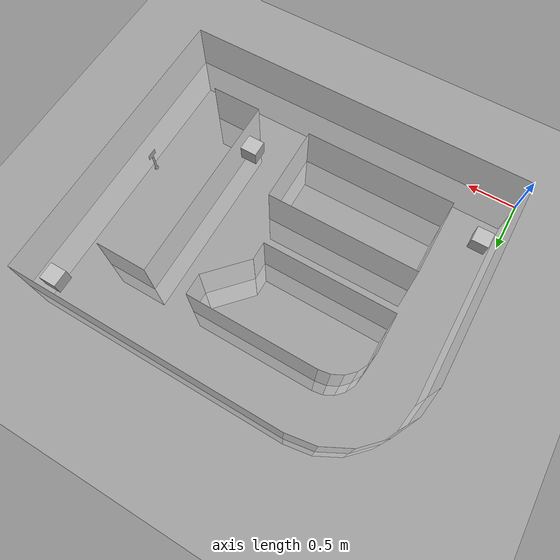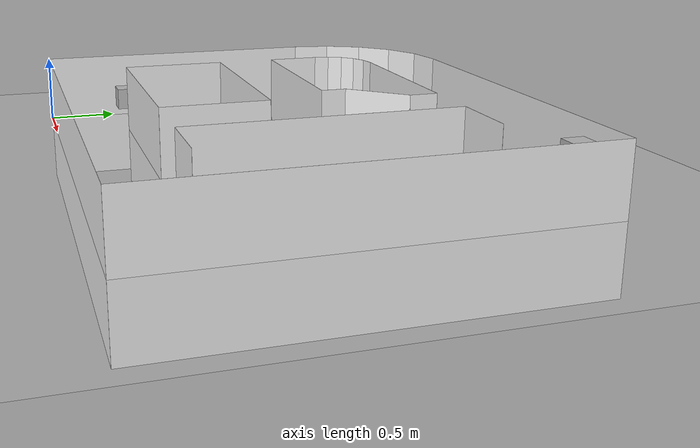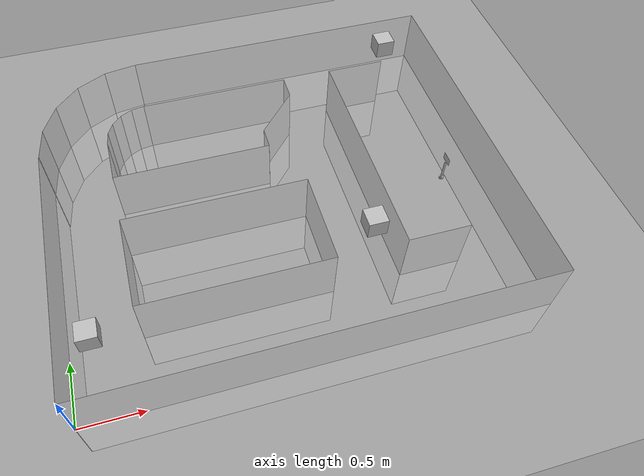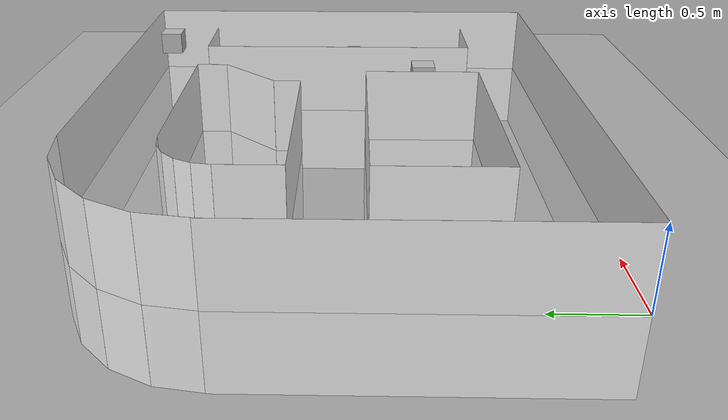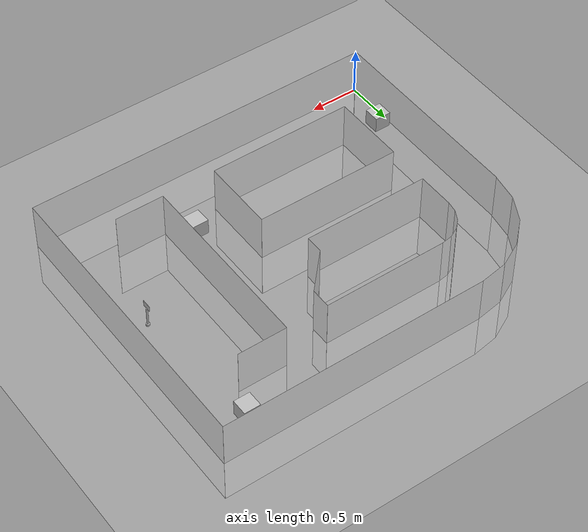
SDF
<sdf version="1.7">
 <world name="default">
  <light name="sun" type="directional">
   <cast_shadows>0</cast_shadows>
   <pose>0 0 10 0 -0 0</pose>
   <diffuse>0.8 0.8 0.8 1</diffuse>
   <specular>0.1 0.1 0.1 1</specular>
   <attenuation>
    <range>1000</range>
    <constant>0.9</constant>
    <linear>0.01</linear>
    <quadratic>0.001</quadratic>
   </attenuation>
   <direction>-0.5 0.5 -1</direction>
   <spot><inner_angle>0</inner_angle><outer_angle>0</outer_angle><falloff>0</falloff></spot>
  </light>
  <model name="ground_plane">
   <static>1</static>
   <link name="link">
    <collision name="collision">
     <geometry><plane><normal>0 0 1</normal><size>100 100</size></plane></geometry>
     <surface><friction><ode><mu>100</mu><mu2>50</mu2></ode></friction></surface>
    </collision>
    <visual name="visual">
     <cast_shadows>0</cast_shadows>
     <geometry><plane><normal>0 0 1</normal><size>100 100</size></plane></geometry>
     <material>
      <script><uri>file://media/materials/scripts/gazebo.material</uri><name>Gazebo/Grey</name></script>
     </material>
    </visual>
   </link>
  </model>
  <model name="wall_0">
   <static>1</static>
   <link name="link">
    <collision name="collision"><geometry><box><size>2.1336 0.001 1</size></box></geometry></collision>
    <visual name="visual">
     <geometry><box><size>2.1336 0.001 1</size></box></geometry>
     <material>
      <script><name>Gazebo/White</name><uri>file://media/materials/scripts/gazebo.material</uri></script>
     </material>
    </visual>
   </link>
   <pose>-0.003439 1.06735 0 0 -0 1.5708</pose>
  </model>
  <model name="wall_1">
   <static>1</static>
   <link name="link">
    <collision name="collision"><geometry><box><size>0.286088 0.001 1</size></box></geometry></collision>
    <visual name="visual">
     <geometry><box><size>0.286088 0.001 1</size></box></geometry>
     <material>
      <script><name>Gazebo/White</name><uri>file://media/materials/scripts/gazebo.material</uri></script>
     </material>
    </visual>
   </link>
   <pose>0.022377 2.27489 0 0 -0 1.41372</pose>
  </model>
  <model name="wall_2">
   <static>1</static>
   <link name="link">
    <collision name="collision"><geometry><box><size>0.286088 0.001 1</size></box></geometry></collision>
    <visual name="visual">
     <geometry><box><size>0.286088 0.001 1</size></box></geometry>
     <material>
      <script><name>Gazebo/White</name><uri>file://media/materials/scripts/gazebo.material</uri></script>
     </material>
    </visual>
   </link>
   <pose>0.109695 2.54362 0 0 -0 1.09956</pose>
  </model>
  <model name="wall_3">
   <static>1</static>
   <link name="link">
    <collision name="collision"><geometry><box><size>0.286088 0.001 1</size></box></geometry></collision>
    <visual name="visual">
     <geometry><box><size>0.286088 0.001 1</size></box></geometry>
     <material>
      <script><name>Gazebo/White</name><uri>file://media/materials/scripts/gazebo.material</uri></script>
     </material>
    </visual>
   </link>
   <pose>0.275783 2.77222 0 0 -0 0.785398</pose>
  </model>
  <model name="wall_4">
   <static>1</static>
   <link name="link">
    <collision name="collision"><geometry><box><size>0.286088 0.001 1</size></box></geometry></collision>
    <visual name="visual">
     <geometry><box><size>0.286088 0.001 1</size></box></geometry>
     <material>
      <script><name>Gazebo/White</name><uri>file://media/materials/scripts/gazebo.material</uri></script>
     </material>
    </visual>
   </link>
   <pose>0.504383 2.93831 0 0 -0 0.471239</pose>
  </model>
  <model name="wall_5">
   <static>1</static>
   <link name="link">
    <collision name="collision"><geometry><box><size>0.286088 0.001 1</size></box></geometry></collision>
    <visual name="visual">
     <geometry><box><size>0.286088 0.001 1</size></box></geometry>
     <material>
      <script><name>Gazebo/White</name><uri>file://media/materials/scripts/gazebo.material</uri></script>
     </material>
    </visual>
   </link>
   <pose>0.773119 3.02563 0 0 -0 0.15708</pose>
  </model>
  <model name="wall_6">
   <static>1</static>
   <link name="link">
    <collision name="collision"><geometry><box><size>2.74321 0.001 1</size></box></geometry></collision>
    <visual name="visual">
     <geometry><box><size>2.74321 0.001 1</size></box></geometry>
     <material>
      <script><name>Gazebo/White</name><uri>file://media/materials/scripts/gazebo.material</uri></script>
     </material>
    </visual>
   </link>
   <pose>2.286 3.04801 0 0 -0 0</pose>
  </model>
  <model name="wall_7">
   <static>1</static>
   <link name="link">
    <collision name="collision"><geometry><box><size>3.04801 0.001 1</size></box></geometry></collision>
    <visual name="visual">
     <geometry><box><size>3.04801 0.001 1</size></box></geometry>
     <material>
      <script><name>Gazebo/White</name><uri>file://media/materials/scripts/gazebo.material</uri></script>
     </material>
    </visual>
   </link>
   <pose>3.65761 1.524 0 0 0 -1.5708</pose>
  </model>
  <model name="wall_8">
   <static>1</static>
   <link name="link">
    <collision name="collision"><geometry><box><size>3.65761 0.001 1</size></box></geometry></collision>
    <visual name="visual">
     <geometry><box><size>3.65761 0.001 1</size></box></geometry>
     <material>
      <script><name>Gazebo/White</name><uri>file://media/materials/scripts/gazebo.material</uri></script>
     </material>
    </visual>
   </link>
   <pose>1.8288 0 0 0 0 -3.14159</pose>
  </model>
  <model name="wall_9">
   <static>1</static>
   <link name="link">
    <collision name="collision"><geometry><box><size>0.762002 0.001 1</size></box></geometry></collision>
    <visual name="visual">
     <geometry><box><size>0.762002 0.001 1</size></box></geometry>
     <material>
      <script><name>Gazebo/White</name><uri>file://media/materials/scripts/gazebo.material</uri></script>
     </material>
    </visual>
   </link>
   <pose>0.558801 0.939802 0 0 -0 1.5708</pose>
  </model>
  <model name="wall_10">
   <static>1</static>
   <link name="link">
    <collision name="collision"><geometry><box><size>1.4986 0.001 1</size></box></geometry></collision>
    <visual name="visual">
     <geometry><box><size>1.4986 0.001 1</size></box></geometry>
     <material>
      <script><name>Gazebo/White</name><uri>file://media/materials/scripts/gazebo.material</uri></script>
     </material>
    </visual>
   </link>
   <pose>1.3081 1.3208 0 0 -0 0</pose>
  </model>
  <model name="wall_11">
   <static>1</static>
   <link name="link">
    <collision name="collision"><geometry><box><size>0.762002 0.001 1</size></box></geometry></collision>
    <visual name="visual">
     <geometry><box><size>0.762002 0.001 1</size></box></geometry>
     <material>
      <script><name>Gazebo/White</name><uri>file://media/materials/scripts/gazebo.material</uri></script>
     </material>
    </visual>
   </link>
   <pose>2.0574 0.939802 0 0 0 -1.5708</pose>
  </model>
  <model name="wall_12">
   <static>1</static>
   <link name="link">
    <collision name="collision"><geometry><box><size>1.4986 0.001 1</size></box></geometry></collision>
    <visual name="visual">
     <geometry><box><size>1.4986 0.001 1</size></box></geometry>
     <material>
      <script><name>Gazebo/White</name><uri>file://media/materials/scripts/gazebo.material</uri></script>
     </material>
    </visual>
   </link>
   <pose>1.3081 0.558801 0 0 0 -3.14159</pose>
  </model>
  <model name="wall_13">
   <static>1</static>
   <link name="link">
    <collision name="collision"><geometry><box><size>0.381001 0.001 1</size></box></geometry></collision>
    <visual name="visual">
     <geometry><box><size>0.381001 0.001 1</size></box></geometry>
     <material>
      <script><name>Gazebo/White</name><uri>file://media/materials/scripts/gazebo.material</uri></script>
     </material>
    </visual>
   </link>
   <pose>0.558801 1.9431 0 0 -0 1.5708</pose>
  </model>
  <model name="wall_14">
   <static>1</static>
   <link name="link">
    <collision name="collision"><geometry><box><size>0.111256 0.001 1</size></box></geometry></collision>
    <visual name="visual">
     <geometry><box><size>0.111256 0.001 1</size></box></geometry>
     <material>
      <script><name>Gazebo/White</name><uri>file://media/materials/scripts/gazebo.material</uri></script>
     </material>
    </visual>
   </link>
   <pose>0.567503 2.18855 0 0 -0 1.41372</pose>
  </model>
  <model name="wall_15">
   <static>1</static>
   <link name="link">
    <collision name="collision"><geometry><box><size>0.111256 0.001 1</size></box></geometry></collision>
    <visual name="visual">
     <geometry><box><size>0.111256 0.001 1</size></box></geometry>
     <material>
      <script><name>Gazebo/White</name><uri>file://media/materials/scripts/gazebo.material</uri></script>
     </material>
    </visual>
   </link>
   <pose>0.60146 2.29306 0 0 -0 1.09956</pose>
  </model>
  <model name="wall_16">
   <static>1</static>
   <link name="link">
    <collision name="collision"><geometry><box><size>0.111256 0.001 1</size></box></geometry></collision>
    <visual name="visual">
     <geometry><box><size>0.111256 0.001 1</size></box></geometry>
     <material>
      <script><name>Gazebo/White</name><uri>file://media/materials/scripts/gazebo.material</uri></script>
     </material>
    </visual>
   </link>
   <pose>0.66605 2.38196 0 0 -0 0.785398</pose>
  </model>
  <model name="wall_17">
   <static>1</static>
   <link name="link">
    <collision name="collision"><geometry><box><size>0.111256 0.001 1</size></box></geometry></collision>
    <visual name="visual">
     <geometry><box><size>0.111256 0.001 1</size></box></geometry>
     <material>
      <script><name>Gazebo/White</name><uri>file://media/materials/scripts/gazebo.material</uri></script>
     </material>
    </visual>
   </link>
   <pose>0.75495 2.44655 0 0 -0 0.471239</pose>
  </model>
  <model name="wall_18">
   <static>1</static>
   <link name="link">
    <collision name="collision"><geometry><box><size>0.111256 0.001 1</size></box></geometry></collision>
    <visual name="visual">
     <geometry><box><size>0.111256 0.001 1</size></box></geometry>
     <material>
      <script><name>Gazebo/White</name><uri>file://media/materials/scripts/gazebo.material</uri></script>
     </material>
    </visual>
   </link>
   <pose>0.859458 2.4805 0 0 -0 0.15708</pose>
  </model>
  <model name="wall_19">
   <static>1</static>
   <link name="link">
    <collision name="collision"><geometry><box><size>1.27 0.001 1</size></box></geometry></collision>
    <visual name="visual">
     <geometry><box><size>1.27 0.001 1</size></box></geometry>
     <material>
      <script><name>Gazebo/White</name><uri>file://media/materials/scripts/gazebo.material</uri></script>
     </material>
    </visual>
   </link>
   <pose>1.5494 2.48921 0 0 -0 0</pose>
  </model>
  <model name="wall_20">
   <static>1</static>
   <link name="link">
    <collision name="collision"><geometry><box><size>0.2032 0.001 1</size></box></geometry></collision>
    <visual name="visual">
     <geometry><box><size>0.2032 0.001 1</size></box></geometry>
     <material>
      <script><name>Gazebo/White</name><uri>file://media/materials/scripts/gazebo.material</uri></script>
     </material>
    </visual>
   </link>
   <pose>2.1844 2.38761 0 0 0 -1.5708</pose>
  </model>
  <model name="wall_21">
   <static>1</static>
   <link name="link">
    <collision name="collision"><geometry><box><size>0.485267 0.001 1</size></box></geometry></collision>
    <visual name="visual">
     <geometry><box><size>0.485267 0.001 1</size></box></geometry>
     <material>
      <script><name>Gazebo/White</name><uri>file://media/materials/scripts/gazebo.material</uri></script>
     </material>
    </visual>
   </link>
   <pose>2.0193 2.1082 0 0 0 -2.31917</pose>
  </model>
  <model name="wall_22">
   <static>1</static>
   <link name="link">
    <collision name="collision"><geometry><box><size>0.1778 0.001 1</size></box></geometry></collision>
    <visual name="visual">
     <geometry><box><size>0.1778 0.001 1</size></box></geometry>
     <material>
      <script><name>Gazebo/White</name><uri>file://media/materials/scripts/gazebo.material</uri></script>
     </material>
    </visual>
   </link>
   <pose>1.8542 1.8415 0 0 0 -1.5708</pose>
  </model>
  <model name="wall_23">
   <static>1</static>
   <link name="link">
    <collision name="collision"><geometry><box><size>1.2954 0.001 1</size></box></geometry></collision>
    <visual name="visual">
     <geometry><box><size>1.2954 0.001 1</size></box></geometry>
     <material>
      <script><name>Gazebo/White</name><uri>file://media/materials/scripts/gazebo.material</uri></script>
     </material>
    </visual>
   </link>
   <pose>1.2065 1.7526 0 0 0 -3.14159</pose>
  </model>
  <model name="wall_24">
   <static>1</static>
   <link name="link">
    <collision name="collision"><geometry><box><size>0.508001 0.001 1</size></box></geometry></collision>
    <visual name="visual">
     <geometry><box><size>0.508001 0.001 1</size></box></geometry>
     <material>
      <script><name>Gazebo/White</name><uri>file://media/materials/scripts/gazebo.material</uri></script>
     </material>
    </visual>
   </link>
   <pose>2.87021 2.48921 0 0 -0 0</pose>
  </model>
  <model name="wall_25">
   <static>1</static>
   <link name="link">
    <collision name="collision"><geometry><box><size>0.508001 0.001 1</size></box></geometry></collision>
    <visual name="visual">
     <geometry><box><size>0.508001 0.001 1</size></box></geometry>
     <material>
      <script><name>Gazebo/White</name><uri>file://media/materials/scripts/gazebo.material</uri></script>
     </material>
    </visual>
   </link>
   <pose>2.87021 0.558801 0 0 0 -3.14159</pose>
  </model>
  <model name="wall_26">
   <static>1</static>
   <link name="link">
    <collision name="collision"><geometry><box><size>1.9304 0.001 1</size></box></geometry></collision>
    <visual name="visual">
     <geometry><box><size>1.9304 0.001 1</size></box></geometry>
     <material>
      <script><name>Gazebo/White</name><uri>file://media/materials/scripts/gazebo.material</uri></script>
     </material>
    </visual>
   </link>
   <pose>2.6162 1.524 0 0 -0 1.5708</pose>
  </model>
  <model name="flag">
   <link name="plate">
    <pose>0 0 0.2425 0 -0 0</pose>
    <collision name="collision">
     <geometry><box><size>0.001 0.1 0.065</size></box></geometry>
     <surface><friction><ode><mu>1</mu><mu2>1</mu2></ode></friction></surface>
    </collision>
    <visual name="visual"><geometry><box><size>0.001 0.1 0.065</size></box></geometry></visual>
    <inertial>
     <inertia><ixx>0.1</ixx><ixy>0</ixy><ixz>0</ixz><iyy>0.1</iyy><iyz>0</iyz><izz>0.1</izz></inertia>
     <mass>0.1</mass>
    </inertial>
   </link>
   <link name="pole">
    <pose>0 0 0.11 0 -0 0</pose>
    <collision name="collision">
     <geometry><cylinder><radius>0.01</radius><length>0.2</length></cylinder></geometry>
     <surface>
      <friction><torsional><coefficient>1</coefficient></torsional><ode><mu>1</mu><mu2>1</mu2></ode></friction>
     </surface>
    </collision>
    <visual name="visual">
     <geometry><cylinder><radius>0.01</radius><length>0.2</length></cylinder></geometry>
    </visual>
    <inertial>
     <inertia><ixx>1</ixx><ixy>0</ixy><ixz>0</ixz><iyy>1</iyy><iyz>0</iyz><izz>1</izz></inertia>
     <mass>1</mass>
    </inertial>
   </link>
   <link name="base">
    <collision name="collision">
     <geometry><cylinder><radius>0.02</radius><length>0.02</length></cylinder></geometry>
     <surface><friction><ode><mu>0.01</mu><mu2>0.01</mu2></ode></friction></surface>
    </collision>
    <visual name="visual">
     <geometry><cylinder><radius>0.02</radius><length>0.02</length></cylinder></geometry>
    </visual>
    <inertial>
     <inertia><ixx>0.1</ixx><ixy>0</ixy><ixz>0</ixz><iyy>0.1</iyy><iyz>0</iyz><izz>0.1</izz></inertia>
     <mass>0.1</mass>
    </inertial>
    <gravity>0</gravity>
   </link>
   <joint name="base_pole" type="fixed">
    <parent>base</parent>
    <child>pole</child>
    <pose>0 0 0.02 0 -0 0</pose>
   </joint>
   <joint name="pole_plate" type="fixed">
    <parent>pole</parent>
    <child>plate</child>
    <pose>0 0 0.1 0 -0 0</pose>
   </joint>
   <pose>3.35 1.40095 0.010019 0.000955 0.000139 3.14145</pose>
  </model>
  <gravity>0 0 -9.8</gravity>
  <magnetic_field>6e-06 2.3e-05 -4.2e-05</magnetic_field>
  <atmosphere type="adiabatic"/>
  <physics name="default_physics" default="0" type="ode">
   <max_step_size>0.001</max_step_size>
   <real_time_factor>1</real_time_factor>
   <real_time_update_rate>1000</real_time_update_rate>
  </physics>
  <scene><ambient>0.4 0.4 0.4 1</ambient><background>0.7 0.7 0.7 1</background><shadows>1</shadows></scene>
  <spherical_coordinates>
   <surface_model>EARTH_WGS84</surface_model>
   <latitude_deg>0</latitude_deg>
   <longitude_deg>0</longitude_deg>
   <elevation>0</elevation>
   <heading_deg>0</heading_deg>
  </spherical_coordinates>
  <model name="sheeps">
   <link name="link">
    <inertial>
     <mass>2</mass>
     <inertia>
      <ixx>0.0416667</ixx>
      <ixy>0</ixy>
      <ixz>0</ixz>
      <iyy>0.0566667</iyy>
      <iyz>0</iyz>
      <izz>0.0683333</izz>
     </inertia>
    </inertial>
    <pose>0.166522 -0 0 0 -0 0</pose>
    <visual name="visual">
     <geometry><mesh><uri>model://sheep/meshes/sheep.dae</uri><scale>0.2 0.2 0.2</scale></mesh></geometry>
     <material><shader type="pixel"/></material>
    </visual>
    <collision name="collision">
     <geometry><box><size>0.2 0.2 0.2</size></box></geometry>
     <surface>
      <friction>
       <ode><mu>1</mu><mu2>1</mu2><fdir1>0 0 0</fdir1><slip1>0</slip1><slip2>0</slip2></ode>
       <torsional>
        <coefficient>1</coefficient>
        <patch_radius>0</patch_radius>
        <surface_radius>0</surface_radius>
        <use_patch_radius>1</use_patch_radius>
        <ode><slip>0</slip></ode>
       </torsional>
      </friction>
      <bounce><restitution_coefficient>0</restitution_coefficient><threshold>1e+06</threshold></bounce>
      <contact>
       <collide_without_contact>0</collide_without_contact>
       <collide_without_contact_bitmask>1</collide_without_contact_bitmask>
       <collide_bitmask>1</collide_bitmask>
       <ode>
        <soft_cfm>0</soft_cfm>
        <soft_erp>0.2</soft_erp>
        <kp>1e+07</kp>
        <kd>1</kd>
        <max_vel>0.1</max_vel>
        <min_depth>0.001</min_depth>
       </ode>
       <bullet>
        <split_impulse>1</split_impulse>
        <split_impulse_penetration_threshold>-0.01</split_impulse_penetration_threshold>
        <soft_cfm>0</soft_cfm>
        <soft_erp>0.2</soft_erp>
        <kp>1e+07</kp>
        <kd>1</kd>
       </bullet>
      </contact>
     </surface>
    </collision>
   </link>
   <model name="sheep">
    <pose>2.47702 0.295503 0.15 0 -0 0</pose>
    <link name="link">
     <inertial>
      <mass>2</mass>
      <inertia>
       <ixx>0.0416667</ixx>
       <ixy>0</ixy>
       <ixz>0</ixz>
       <iyy>0.0566667</iyy>
       <iyz>0</iyz>
       <izz>0.0683333</izz>
      </inertia>
     </inertial>
     <collision name="collision">
      <geometry><box><size>0.2 0.2 0.2</size></box></geometry>
      <surface>
       <friction><ode><mu>1</mu><mu2>1</mu2></ode></friction>
       <contact><ode><kp>1e+07</kp><kd>1</kd><min_depth>0.001</min_depth><max_vel>0.1</max_vel></ode></contact>
      </surface>
     </collision>
     <visual name="visual">
      <geometry><mesh><uri>model://sheep/meshes/sheep.dae</uri><scale>0.2 0.2 0.2</scale></mesh></geometry>
     </visual>
    </link>
   </model>
   <model name="sheep_0">
    <pose>3.30414 2.30176 0.15 0 -0 0</pose>
    <link name="link">
     <inertial>
      <mass>2</mass>
      <inertia>
       <ixx>0.0416667</ixx>
       <ixy>0</ixy>
       <ixz>0</ixz>
       <iyy>0.0566667</iyy>
       <iyz>0</iyz>
       <izz>0.0683333</izz>
      </inertia>
     </inertial>
     <collision name="collision">
      <geometry><box><size>0.2 0.2 0.2</size></box></geometry>
      <surface>
       <friction><ode><mu>1</mu><mu2>1</mu2></ode></friction>
       <contact><ode><kp>1e+07</kp><kd>1</kd><min_depth>0.001</min_depth><max_vel>0.1</max_vel></ode></contact>
      </surface>
     </collision>
     <visual name="visual">
      <geometry><mesh><uri>model://sheep/meshes/sheep.dae</uri><scale>0.2 0.2 0.2</scale></mesh></geometry>
     </visual>
    </link>
   </model>
   <static>0</static>
   <pose>-0.069975 0.521314 0.099025 0.00016 3.8e-05 -0.00033</pose>
  </model>
 </world>
</sdf>
